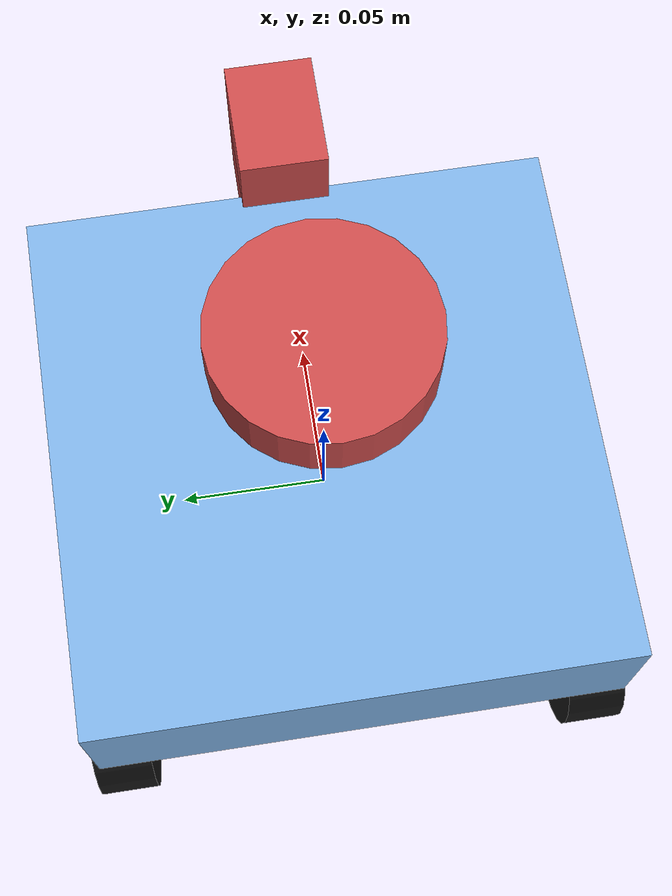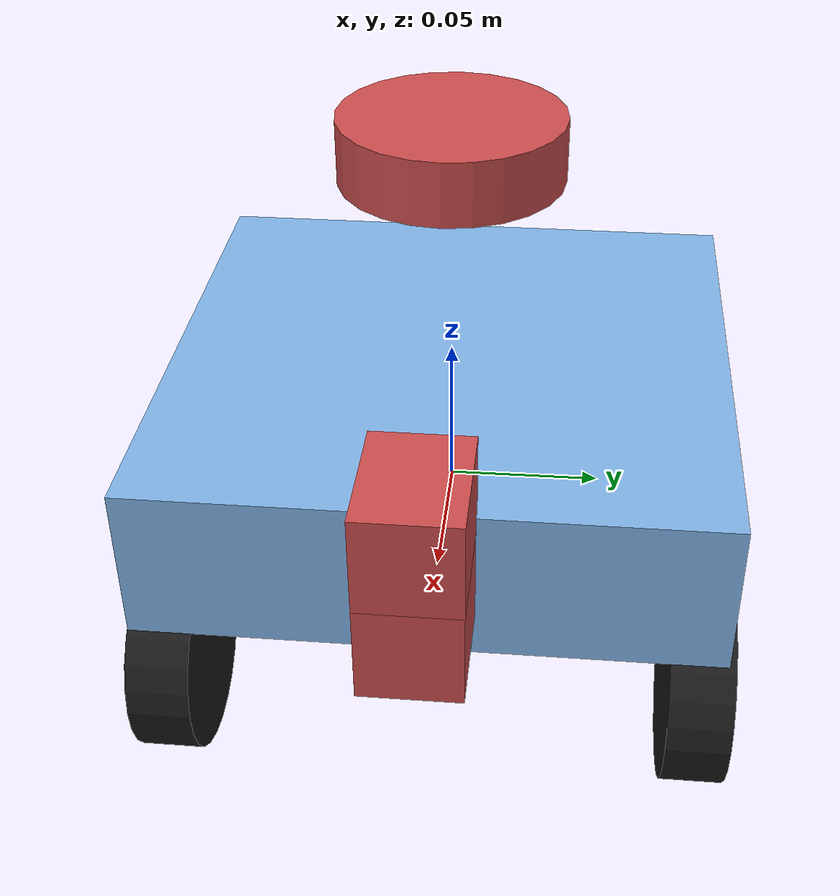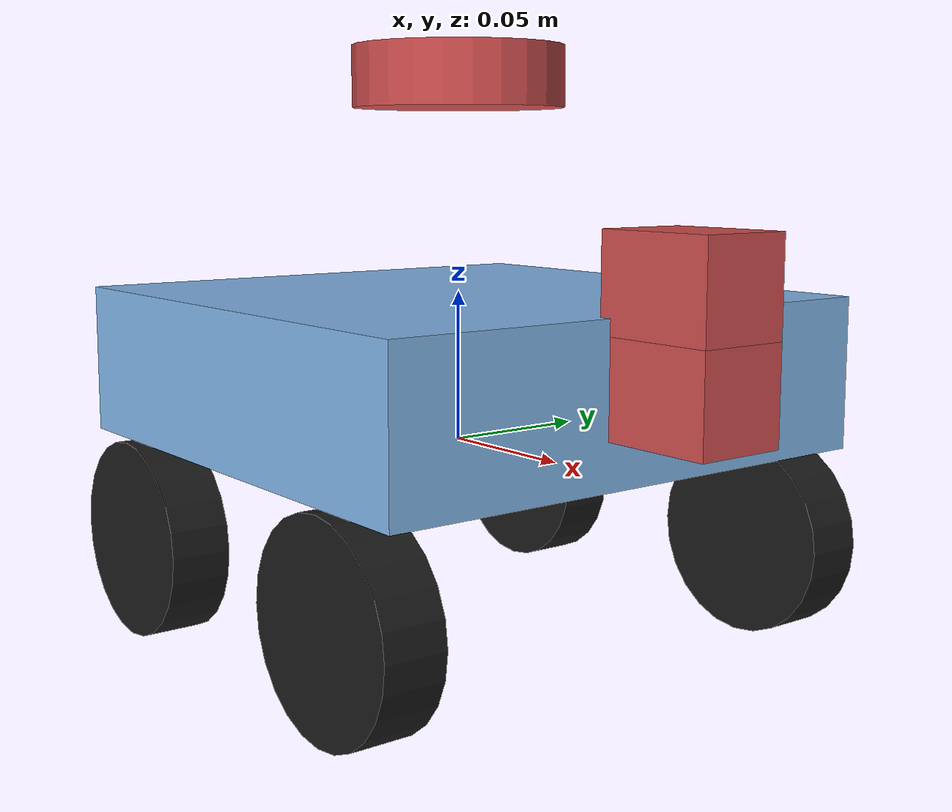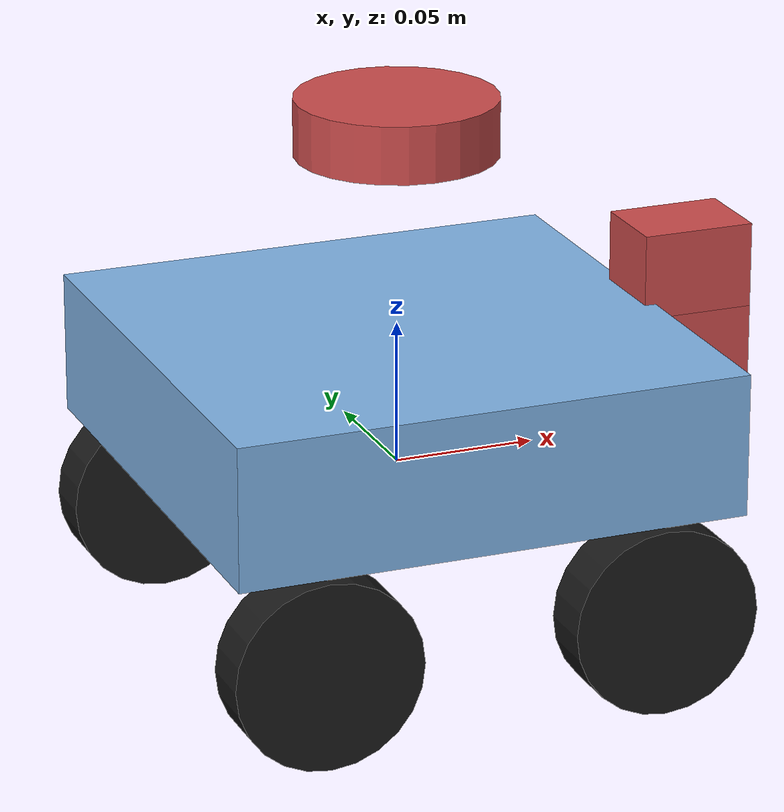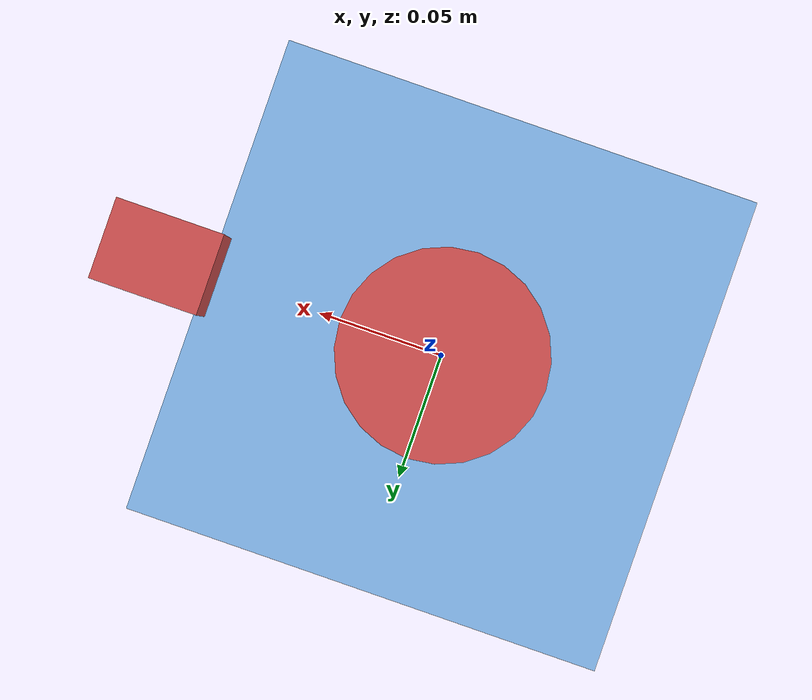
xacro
<?xml version="1.0"?>
<robot name="mecanum_car" xmlns:xacro="http://www.ros.org/wiki/xacro">

  <!-- ════════════════ 尺寸参数：把这里改成你量到的数值 ════════════════ -->
  <!-- 轮子 -->
  <xacro:property name="wheel_radius" value="0.03295" />   <!-- 轮半径 (m) -->
  <xacro:property name="wheel_width"  value="0.02" />      <!-- 轮厚 (m) -->
  <xacro:property name="wheelbase"    value="0.12" />      <!-- 轴距：前轮轴中心到后轮轴中心 -->
  <xacro:property name="track_width"  value="0.1674" />    <!-- 轮距：左轮中心到右轮中心 -->
  <!-- 车体（碰撞用，量底盘实际长宽高） -->
  <xacro:property name="base_length"  value="0.18" />      <!-- 车体长 -->
  <xacro:property name="base_width"   value="0.18" />      <!-- 车体宽 -->
  <xacro:property name="base_height"  value="0.05" />      <!-- 车体高 -->
  <!-- 雷达 -->
  <xacro:property name="lidar_x" value="0.0" />            <!-- 前后偏移，前正后负 -->
  <xacro:property name="lidar_y" value="0.0" />            <!-- 左右偏移 -->
  <xacro:property name="lidar_z" value="0.12059" />        <!-- 离地高度 -->
  <!-- 相机 -->
  <xacro:property name="camera_x" value="0.10597" />       <!-- 前后偏移（车头为正） -->
  <xacro:property name="camera_z" value="0.029874" />      <!-- 离地高度 -->
  <!-- IMU -->
  <xacro:property name="imu_x" value="0.0" />              <!-- 前后偏移 -->
  <xacro:property name="imu_y" value="0.0" />              <!-- 左右偏移 -->
  <xacro:property name="imu_z" value="0.0" />              <!-- 离地高度 -->
  <!-- 质量（真机模型无影响，仿真才用，大致填就行） -->
  <xacro:property name="chassis_mass" value="0.47" />
  <xacro:property name="wheel_mass"   value="0.05" />

  <material name="chassis_material">
    <color rgba="0.5 0.7 0.9 1"/>
  </material>
  <material name="wheel_material">
    <color rgba="0.1 0.1 0.1 1"/>
  </material>
  <material name="sensor_material">
    <color rgba="0.8 0.3 0.3 1"/>
  </material>

  <!-- 地面投影坐标系（NAV2 常用），和 base_link 重合 -->
  <link name="base_footprint"/>
  <joint name="base_footprint_joint" type="fixed">
    <parent link="base_footprint"/>
    <child link="base_link"/>
    <origin xyz="0 0 0" rpy="0 0 0"/>
  </joint>

  <!-- ════════════════ 底盘 ════════════════ -->
  <link name="base_link">
    <inertial>
      <origin xyz="0 0 ${base_height/2}" rpy="0 0 0"/>
      <mass value="${chassis_mass}"/>
      <inertia ixx="${chassis_mass/12*(base_width**2 + base_height**2)}"
               ixy="0" ixz="0"
               iyy="${chassis_mass/12*(base_length**2 + base_height**2)}"
               iyz="0"
               izz="${chassis_mass/12*(base_length**2 + base_width**2)}"/>
    </inertial>
    <visual>
      <origin xyz="0 0 ${base_height/2}" rpy="0 0 0"/>
      <geometry>
        <box size="${base_length} ${base_width} ${base_height}"/>
      </geometry>
      <material name="chassis_material"/>
    </visual>
    <collision>
      <origin xyz="0 0 ${base_height/2}" rpy="0 0 0"/>
      <geometry>
        <box size="${base_length} ${base_width} ${base_height}"/>
      </geometry>
    </collision>
  </link>

  <xacro:macro name="mecanum_wheel" params="name side x y z">
    <link name="${name}">
      <inertial>
        <origin xyz="0 0 0" rpy="0 0 0"/>
        <mass value="${wheel_mass}"/>
        <inertia ixx="${wheel_mass/12*(3*wheel_radius**2 + wheel_width**2)}"
                 ixy="0" ixz="0"
                 iyy="${wheel_mass/2*wheel_radius**2}"
                 iyz="0"
                 izz="${wheel_mass/12*(3*wheel_radius**2 + wheel_width**2)}"/>
      </inertial>
      <visual>
        <!-- rpy 绕 x 转 90°，让圆柱轴（默认 z）变成 y，即绕 y 轴滚动 -->
        <origin xyz="0 0 0" rpy="1.5708 0 0"/>
        <geometry>
          <cylinder radius="${wheel_radius}" length="${wheel_width}"/>
        </geometry>
        <material name="wheel_material"/>
      </visual>
      <collision>
        <origin xyz="0 0 0" rpy="1.5708 0 0"/>
        <geometry>
          <cylinder radius="${wheel_radius}" length="${wheel_width}"/>
        </geometry>
      </collision>
    </link>
    <joint name="${name}_joint" type="continuous">
      <origin xyz="${x} ${y} ${z}" rpy="0 0 0"/>
      <parent link="base_link"/>
      <child link="${name}"/>
      <axis xyz="0 ${side} 0"/>
    </joint>
  </xacro:macro>

  <xacro:mecanum_wheel name="left_front_wheel" side="1"
                       x="${ wheelbase/2}" y="${ track_width/2}" z="${-wheel_radius}"/>
  <xacro:mecanum_wheel name="left_back_wheel"  side="1"
                       x="${-wheelbase/2}" y="${ track_width/2}" z="${-wheel_radius}"/>
  <xacro:mecanum_wheel name="right_front_wheel" side="-1"
                       x="${ wheelbase/2}" y="${-track_width/2}" z="${-wheel_radius}"/>
  <xacro:mecanum_wheel name="right_back_wheel"  side="-1"
                       x="${-wheelbase/2}" y="${-track_width/2}" z="${-wheel_radius}"/>

  <!-- ════════════════ 雷达 ════════════════ -->
  <link name="lidar_link">
    <inertial>
      <mass value="0.04"/>
      <inertia ixx="1e-5" ixy="0" ixz="0" iyy="1e-5" iyz="0" izz="1e-5"/>
    </inertial>
    <visual>
      <geometry>
        <cylinder radius="0.035" length="0.02"/>
      </geometry>
      <material name="sensor_material"/>
    </visual>
    <collision>
      <geometry>
        <cylinder radius="0.035" length="0.02"/>
      </geometry>
    </collision>
  </link>
  <joint name="lidar_joint" type="fixed">
    <origin xyz="${lidar_x} ${lidar_y} ${lidar_z}" rpy="0 0 0"/>
    <parent link="base_link"/>
    <child link="lidar_link"/>
  </joint>

  <!-- ════════════════ 相机（可俯仰） ════════════════ -->
  <link name="camera_link">
    <inertial>
      <mass value="0.05"/>
      <inertia ixx="1e-5" ixy="0" ixz="0" iyy="1e-5" iyz="0" izz="1e-5"/>
    </inertial>
    <visual>
      <geometry>
        <box size="0.04 0.03 0.03"/>
      </geometry>
      <material name="sensor_material"/>
    </visual>
    <collision>
      <geometry>
        <box size="0.04 0.03 0.03"/>
      </geometry>
    </collision>
  </link>
  <joint name="camera_joint" type="revolute">
    <origin xyz="${camera_x} 0 ${camera_z}" rpy="0 0 0"/>
    <parent link="base_link"/>
    <child link="camera_link"/>
    <axis xyz="0 1 0"/>
    <limit lower="-1.4" upper="1" effort="0" velocity="0"/>
  </joint>

  <!-- ════════════════ 相机2（原亚博模型里的第二路相机/传感器） ════════════════ -->
  <link name="camera2_link">
    <inertial>
      <mass value="0.05"/>
      <inertia ixx="1e-5" ixy="0" ixz="0" iyy="1e-5" iyz="0" izz="1e-5"/>
    </inertial>
    <visual>
      <geometry>
        <box size="0.04 0.03 0.03"/>
      </geometry>
      <material name="sensor_material"/>
    </visual>
    <collision>
      <geometry>
        <box size="0.04 0.03 0.03"/>
      </geometry>
    </collision>
  </link>
  <joint name="camera2_joint" type="revolute">
    <origin xyz="${camera_x} 0 ${camera_z + 0.03}" rpy="0 0 0"/>
    <parent link="base_link"/>
    <child link="camera2_link"/>
    <axis xyz="0 -1 0"/>
    <limit lower="-1" upper="1" effort="0" velocity="0"/>
  </joint>

  <!-- ════════════════ IMU ════════════════ -->
  <link name="imu_link">
    <inertial>
      <mass value="0.02"/>
      <inertia ixx="1e-5" ixy="0" ixz="0" iyy="1e-5" iyz="0" izz="1e-5"/>
    </inertial>
    <visual>
      <geometry>
        <box size="0.03 0.03 0.02"/>
      </geometry>
      <material name="sensor_material"/>
    </visual>
    <collision>
      <geometry>
        <box size="0.03 0.03 0.02"/>
      </geometry>
    </collision>
  </link>
  <joint name="imu_joint" type="fixed">
    <origin xyz="${imu_x} ${imu_y} ${imu_z}" rpy="0 0 0"/>
    <parent link="base_link"/>
    <child link="imu_link"/>
  </joint>

</robot>
